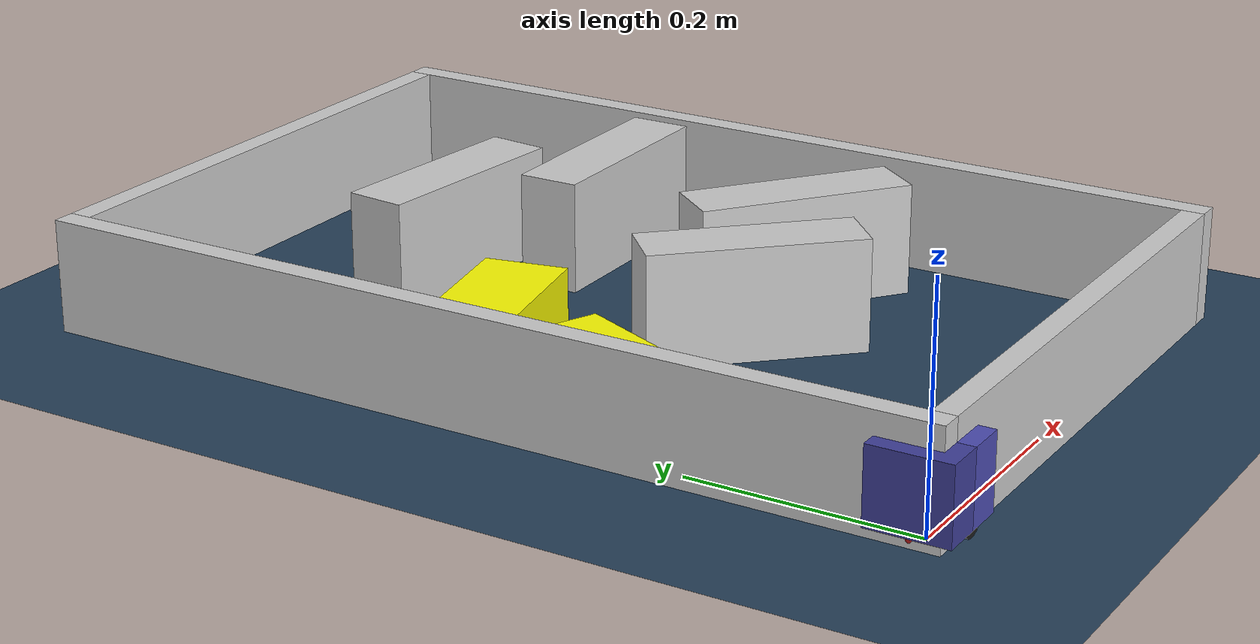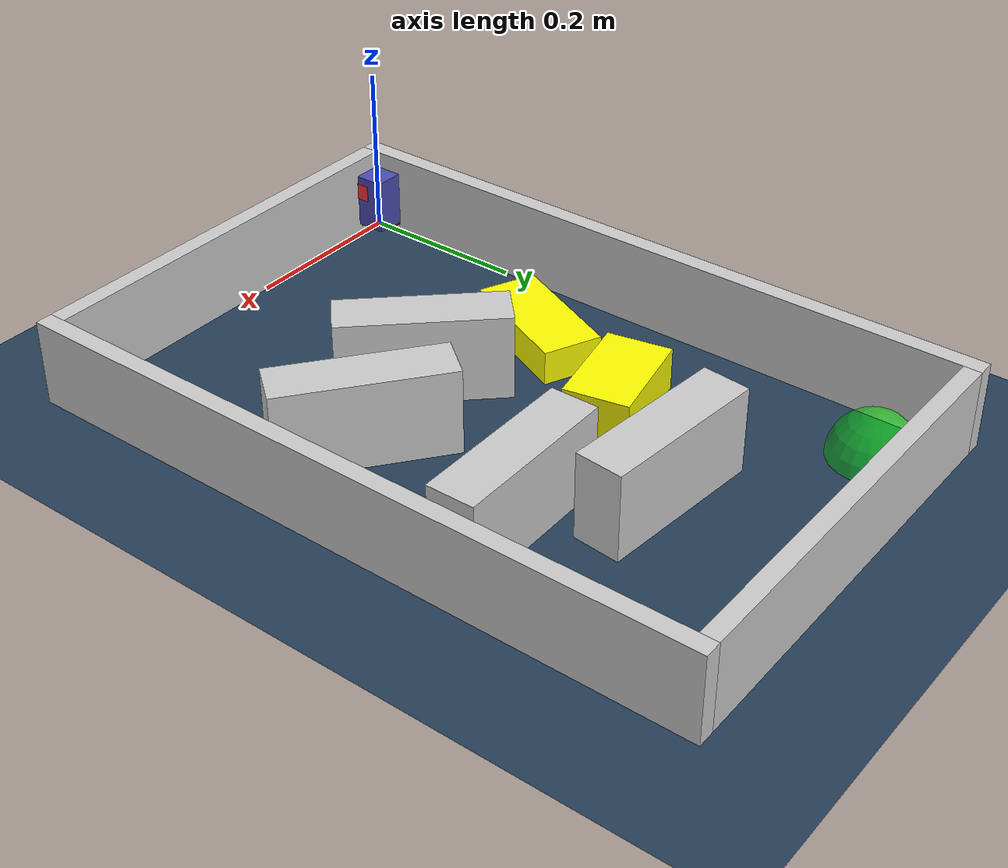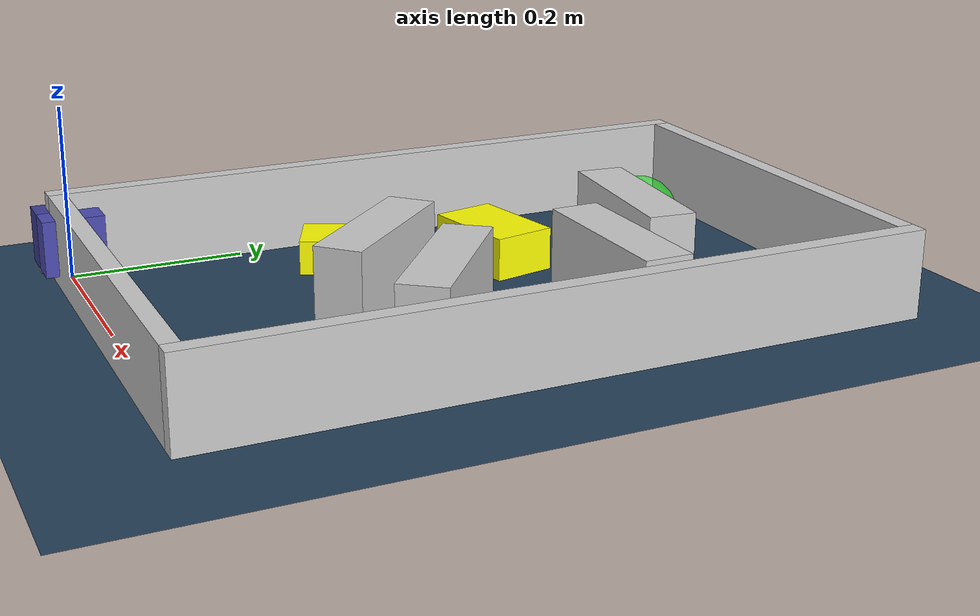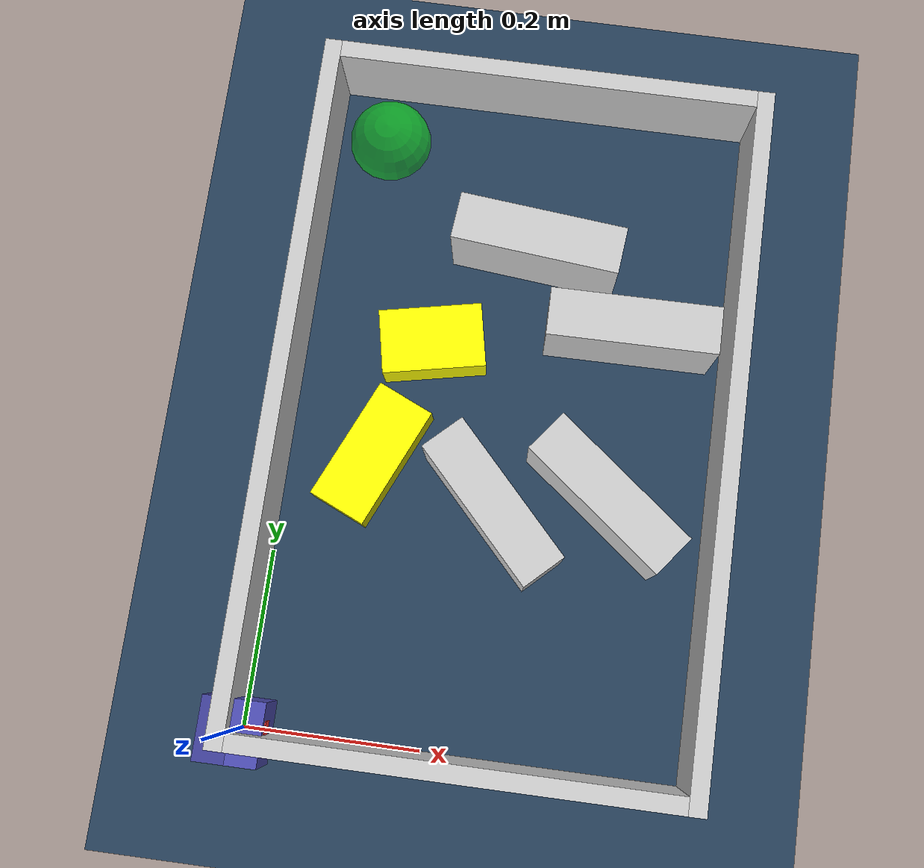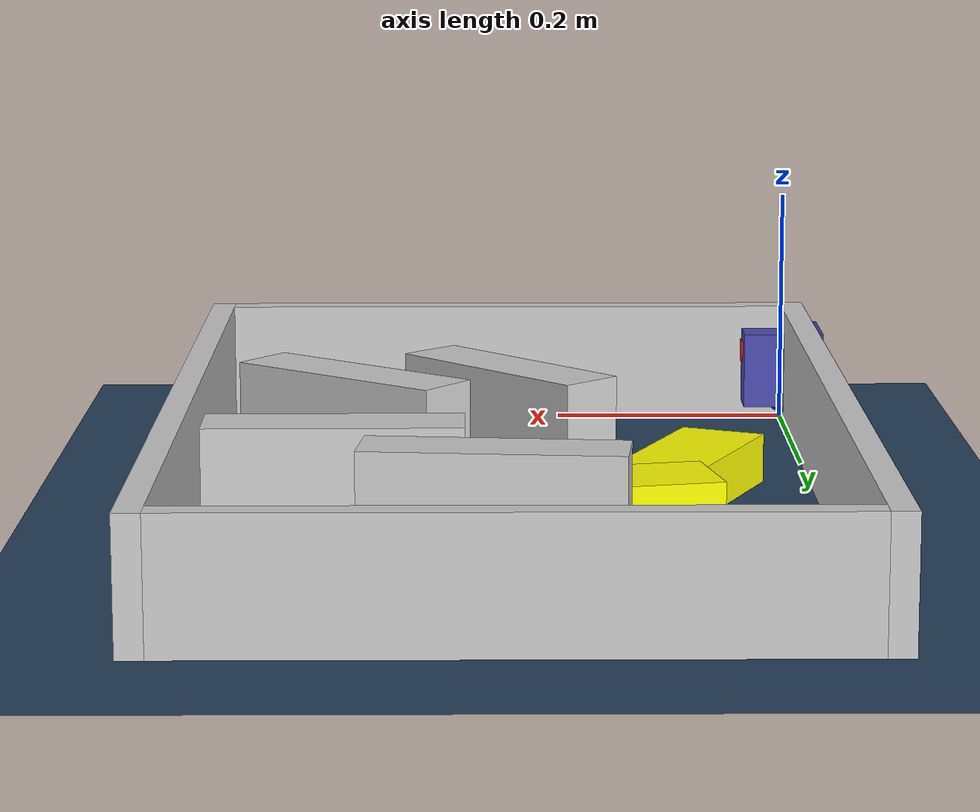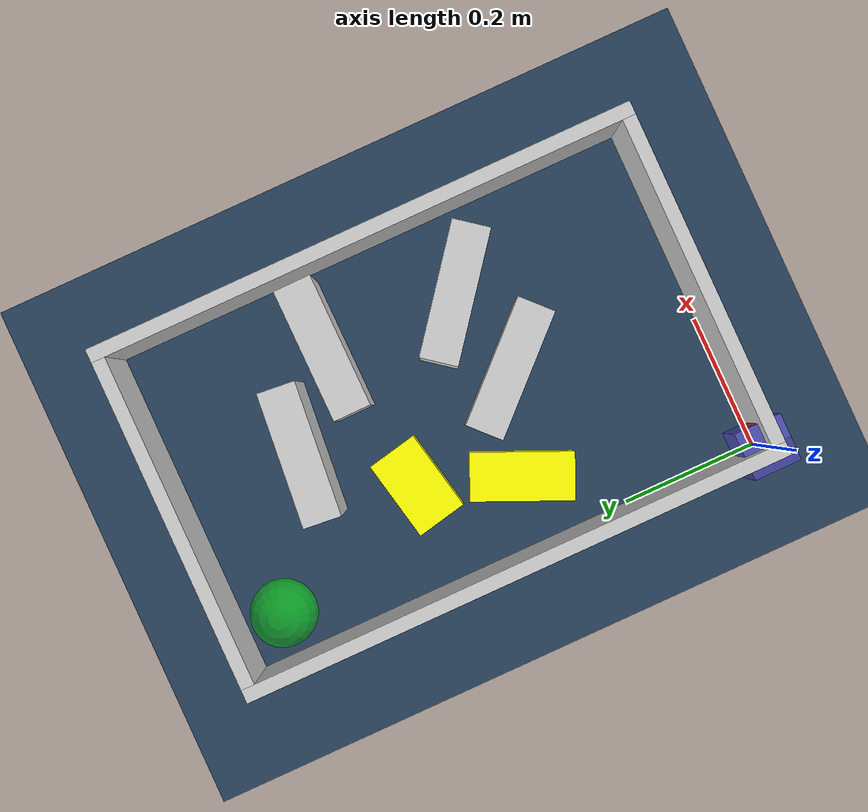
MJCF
<?xml version="1.0" ?>
<mujoco model="generated_environment">
  <option cone="elliptic" integrator="implicitfast" iterations="100" timestep="0.002"/>
  <default>
    <geom density="1"/>
  </default>
  <asset>
    <texture builtin="gradient" height="3072" rgb1="0.3 0.5 0.7" rgb2="0 0 0" type="skybox" width="512"/>
    <texture builtin="checker" height="300" mark="edge" markrgb="0.8 0.8 0.8" name="groundplane" rgb1="0.2 0.3 0.4" rgb2="0.1 0.2 0.3" type="2d" width="300"/>
    <material name="groundplane" reflectance="0.2" texrepeat="5 5" texture="groundplane" texuniform="true"/>
    <material name="robot" rgba="1.0 1.0 0.0 1.0"/>
  </asset>
  <include file="/home/dhruv/projects_dhruv/namo/namo_cpp/test_xml/little-car-modeling-package/assets/mjcf/little_car.xml"/>
  <worldbody>
    <light dir="0 0 -1" directional="true" pos="0 0 1.5"/>
    <geom condim="4" friction="0.5 0.005 0.001" material="groundplane" name="floor" size="0 0 0.05" type="plane"/>
    <body name="walls">
      <geom name="wall_1" condim="4" pos="-0.01 0.3875 0.05" friction="1 0.005 0.0001" rgba="0.800000011920929 0.800000011920929 0.800000011920929 1.0" size="0.01 0.40750000000000003 0.05" type="box"/>
      <geom name="wall_2" condim="4" pos="0.5 0.3875 0.05" friction="1 0.005 0.0001" rgba="0.800000011920929 0.800000011920929 0.800000011920929 1.0" size="0.01 0.40750000000000003 0.05" type="box"/>
      <geom name="wall_3" condim="4" pos="0.245 -0.01 0.05" friction="1 0.005 0.0001" rgba="0.800000011920929 0.800000011920929 0.800000011920929 1.0" size="0.245 0.01 0.05" type="box"/>
      <geom name="wall_4" condim="4" pos="0.245 0.785 0.05" friction="1 0.005 0.0001" rgba="0.800000011920929 0.800000011920929 0.800000011920929 1.0" size="0.245 0.01 0.05" type="box"/>
    </body>
    <body name="obstacle_1_movable">
      <geom name="obstacle_1_movable" condim="4" pos="0.0999542575955241 0.32334508882645435 0.02" quat="-0.978423666318235 0 0 0.2066086377390432" friction="1 0.005 0.0001" rgba="1 1 0 1" size="0.035 0.075 0.02" type="box" mass="0.1"/>
      <joint type="free"/>
    </body>
    <body name="obstacle_2_movable">
      <geom name="obstacle_2_movable" condim="4" pos="0.15076581805512745 0.46441219790802374 0.025" quat="0.6315181139788237 0 0 0.7753611234235499" friction="1 0.005 0.0001" rgba="1 1 0 1" size="0.0375 0.06 0.025" type="box" mass="0.1"/>
      <joint type="free"/>
    </body>
    <body name="wall_5">
      <geom name="wall_5" condim="4" pos="0.25862402496634523 0.5901965180400385 0.05" quat="0.7398603579099016 0 0 0.6727604705936819" friction="1 0.005 0.0001" rgba="0.800000011920929 0.800000011920929 0.800000011920929 1.0" size="0.0275 0.0975 0.05" type="box"/>
    </body>
    <body name="wall_6">
      <geom name="wall_6" condim="4" pos="0.37140789120681894 0.30456154054747564 0.05" quat="-0.43939720688821404 0 0 0.8982928779517491" friction="1 0.005 0.0001" rgba="0.800000011920929 0.800000011920929 0.800000011920929 1.0" size="0.0275 0.0975 0.05" type="box"/>
    </body>
    <body name="wall_7">
      <geom name="wall_7" condim="4" pos="0.3778559095249193 0.501331178590263 0.05" quat="0.7041829545952709 0 0 0.710018567685011" friction="1 0.005 0.0001" rgba="0.800000011920929 0.800000011920929 0.800000011920929 1.0" size="0.0275 0.0975 0.05" type="box"/>
    </body>
    <body name="wall_8">
      <geom name="wall_8" condim="4" pos="0.24616916000878583 0.278880211318278 0.05" quat="0.3955655553337015 0 0 0.9184377449961104" friction="1 0.005 0.0001" rgba="0.800000011920929 0.800000011920929 0.800000011920929 1.0" size="0.095 0.0275 0.05" type="box"/>
    </body>
    <site name="goal" type="sphere" size="0.05 0.05 0.05" rgba="0 1 0 0.5" pos="0.060502 0.718623 0.0"/>
  </worldbody>
</mujoco>

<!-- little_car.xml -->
<mujoco model="little_car">
  <compiler angle="radian" autolimits="true"/>
  <default>
    <geom condim="4"/>
    <joint damping="0.01" armature="0.0001"/>
  </default>
  <worldbody>
    <body name="car" pos="0 0 0.010000">
      <freejoint name="car_freejoint"/>
      <inertial pos="0.000000 0 0.037500" mass="0.350000"
                diaginertia="0.000266 0.000266 0.000286"/>
      <geom name="front_chassis_collision" type="box" pos="0.017500 0 0.037500"
            size="0.017500 0.035000 0.032500"
            rgba="0.3 0.3 0.7 1"/>
      <geom name="rear_chassis_collision" type="box" pos="-0.017500 0 0.037500"
            size="0.017500 0.035000 0.032500"
            rgba="0.25 0.25 0.6 1"/>
      <geom name="front_marker" type="box" pos="0.034000 0 0.050500"
            size="0.002000 0.015000 0.010000"
            rgba="1.0 0.2 0.2 1" contype="0" conaffinity="0"/>

      <body name="rear_support_body" pos="-0.030000 0.000000 0.002500">
        <joint name="rear_caster_joint" type="ball" damping="0.0001"/>
        <inertial pos="0 0 0" mass="0.025000"
                  diaginertia="0.000001 0.000001 0.000001"/>
        <geom name="rear_support" type="sphere"
              pos="0 0 0"
              size="0.002500"
              friction="0.000000 0.000000 0.000000"
              rgba="0.7 0.1 0.1 1"/>
      </body>

      <body name="front_support_body" pos="0.030000 0.000000 0.002500">
        <joint name="front_caster_joint" type="ball" damping="0.0001"/>
        <inertial pos="0 0 0" mass="0.025000"
                  diaginertia="0.000001 0.000001 0.000001"/>
        <geom name="front_support" type="sphere"
              pos="0 0 0"
              size="0.002500"
              friction="0.000000 0.000000 0.000000"
              rgba="0.1 0.7 0.1 1"/>
      </body>

      <body name="left_wheel" pos="0.000000 0.034000 0.015000">
        <inertial pos="0 0 0" mass="0.050000"
                  diaginertia="0.000003 0.000006 0.000003"/>
        <joint name="left_wheel_joint" type="hinge" axis="0 1 0"/>
        <geom name="left_wheel_collision" type="cylinder" size="0.015000 0.000500"
              euler="1.57079632679 0 0" rgba="0.1 0.1 0.1 1"/>
      </body>

      <body name="right_wheel" pos="0.000000 -0.034000 0.015000">
        <inertial pos="0 0 0" mass="0.050000"
                  diaginertia="0.000003 0.000006 0.000003"/>
        <joint name="right_wheel_joint" type="hinge" axis="0 1 0"/>
        <geom name="right_wheel_collision" type="cylinder" size="0.015000 0.000500"
              euler="1.57079632679 0 0" rgba="0.1 0.1 0.1 1"/>
      </body>
    </body>
  </worldbody>
  <contact>
    <exclude body1="car" body2="left_wheel"/>
    <exclude body1="car" body2="right_wheel"/>
  </contact>
  <actuator>
    <velocity name="left_wheel_drive" joint="left_wheel_joint"
              ctrlrange="-25.000000 25.000000"
              kv="0.750000" forcerange="-0.500000 0.500000"/>
    <velocity name="right_wheel_drive" joint="right_wheel_joint"
              ctrlrange="-25.000000 25.000000"
              kv="0.750000" forcerange="-0.500000 0.500000"/>
  </actuator>
</mujoco>
